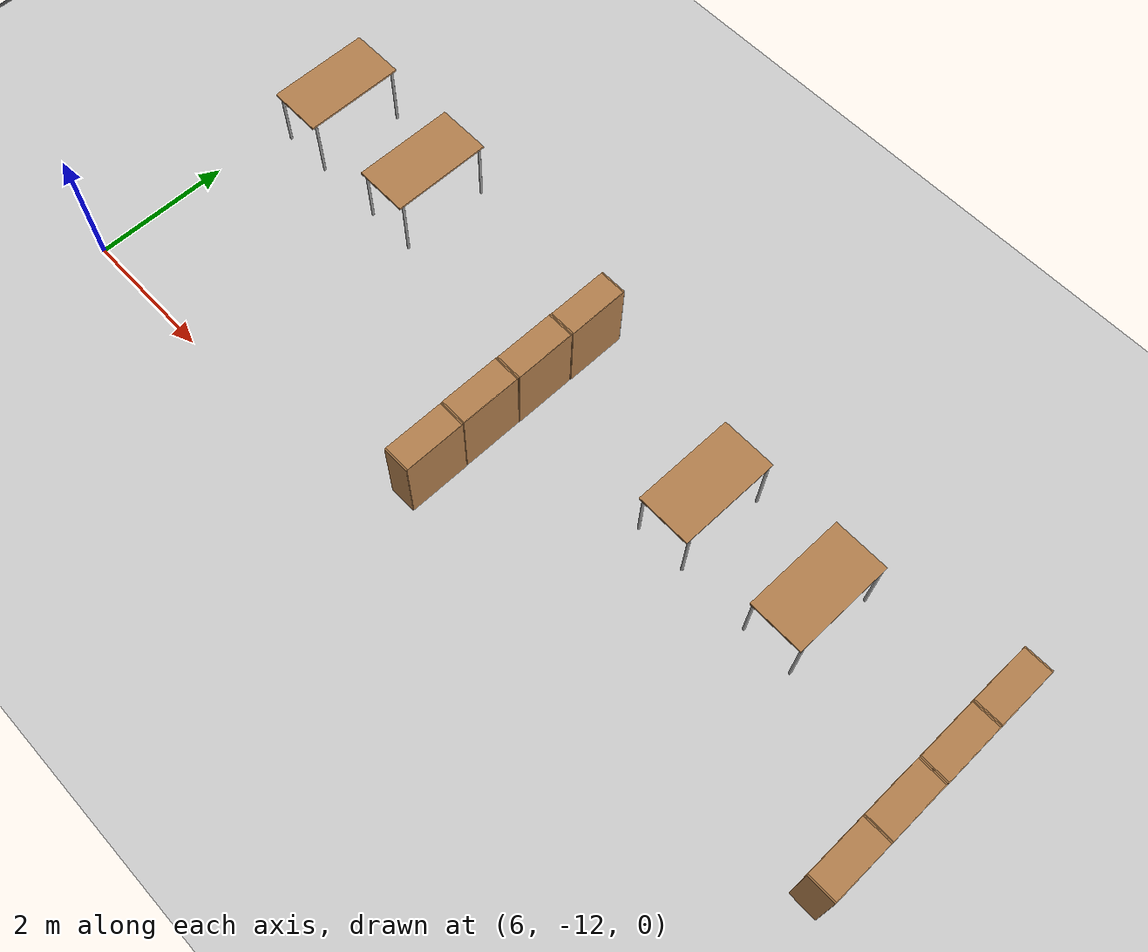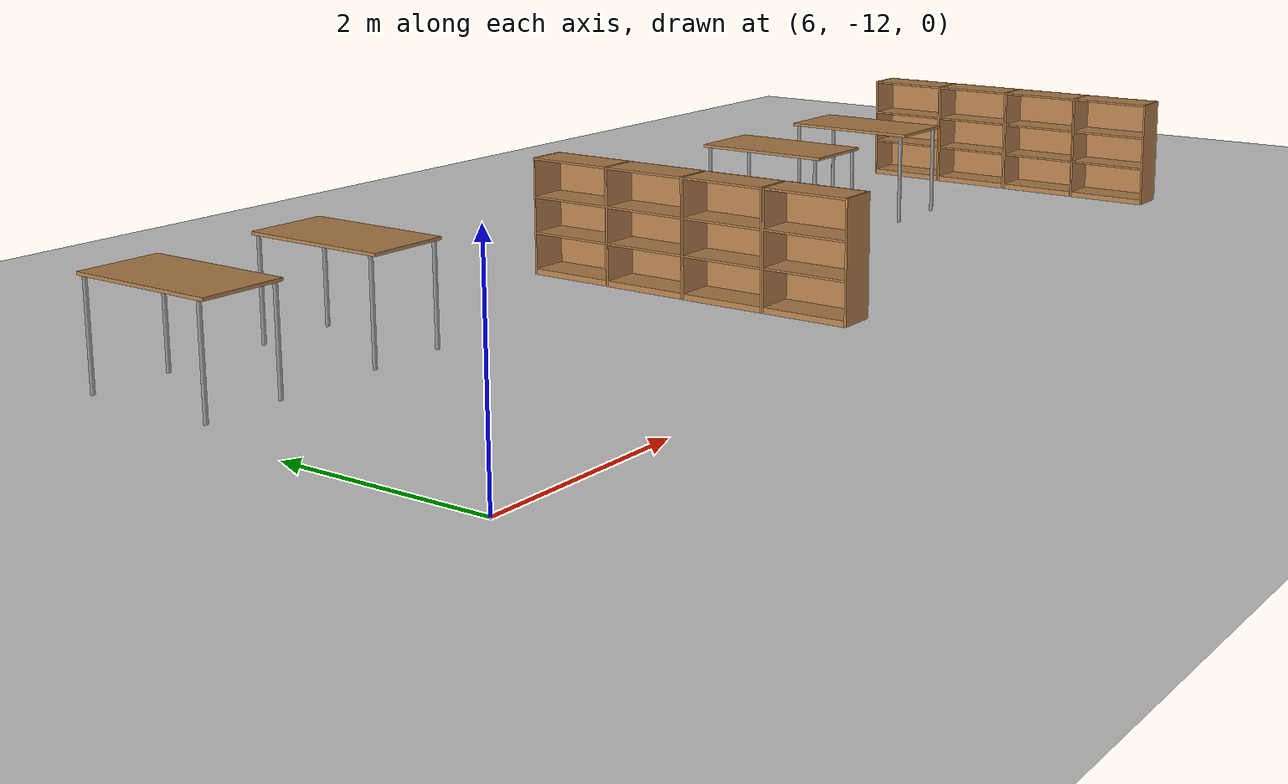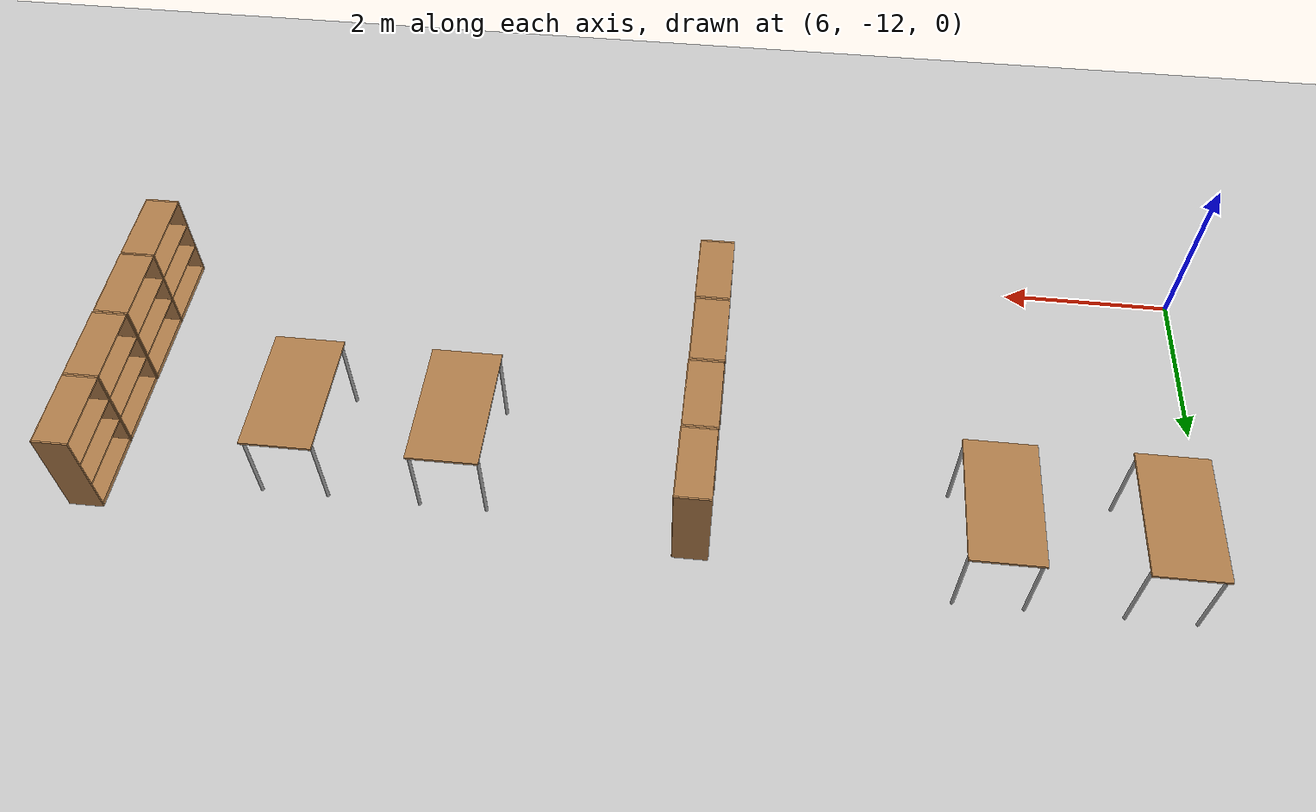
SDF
<sdf version="1.7">
 <world name="default">
  <model name="ground_plane">
   <static>1</static>
   <link name="link">
    <collision name="collision">
     <geometry><plane><normal>0 0 1</normal><size>100 100</size></plane></geometry>
     <surface>
      <contact><collide_bitmask>65535</collide_bitmask></contact>
      <friction><ode><mu>100</mu><mu2>50</mu2></ode></friction>
     </surface>
    </collision>
    <visual name="visual">
     <cast_shadows>0</cast_shadows>
     <geometry><plane><normal>0 0 1</normal><size>100 100</size></plane></geometry>
     <material>
      <script><uri>file://media/materials/scripts/gazebo.material</uri><name>Gazebo/Grey</name></script>
     </material>
    </visual>
   </link>
  </model>
  <model name="asphalt_plane">
   <static>1</static>
   <link name="link">
    <collision name="collision"><geometry><box><size>16.2909 36.5058 0.1</size></box></geometry></collision>
    <visual name="visual">
     <cast_shadows>0</cast_shadows>
     <geometry><box><size>16.2909 36.5058 0.1</size></box></geometry>
     <material>
      <script>
       <uri>model://asphalt_plane/materials/scripts</uri>
       <uri>model://asphalt_plane/materials/textures</uri>
       <name>vrc/asphalt</name>
      </script>
     </material>
    </visual>
   </link>
   <pose>-24.6928 -1.37234 0 0 -0 0</pose>
  </model>
  <model name="bookshelf">
   <static>1</static>
   <link name="link">
    <inertial><mass>1</mass></inertial>
    <collision name="back">
     <pose>0 0.005 0.6 0 -0 0</pose>
     <geometry><box><size>0.9 0.01 1.2</size></box></geometry>
    </collision>
    <visual name="visual1">
     <pose>0 0.005 0.6 0 -0 0</pose>
     <geometry><box><size>0.9 0.01 1.2</size></box></geometry>
     <material>
      <script><uri>file://media/materials/scripts/gazebo.material</uri><name>Gazebo/Wood</name></script>
     </material>
    </visual>
    <collision name="left_side">
     <pose>0.45 -0.195 0.6 0 -0 0</pose>
     <geometry><box><size>0.02 0.4 1.2</size></box></geometry>
    </collision>
    <visual name="visual2">
     <pose>0.45 -0.195 0.6 0 -0 0</pose>
     <geometry><box><size>0.02 0.4 1.2</size></box></geometry>
     <material>
      <script><uri>file://media/materials/scripts/gazebo.material</uri><name>Gazebo/Wood</name></script>
     </material>
    </visual>
    <collision name="right_side">
     <pose>-0.45 -0.195 0.6 0 -0 0</pose>
     <geometry><box><size>0.02 0.4 1.2</size></box></geometry>
    </collision>
    <visual name="visual3">
     <pose>-0.45 -0.195 0.6 0 -0 0</pose>
     <geometry><box><size>0.02 0.4 1.2</size></box></geometry>
     <material>
      <script><uri>file://media/materials/scripts/gazebo.material</uri><name>Gazebo/Wood</name></script>
     </material>
    </visual>
    <collision name="bottom">
     <pose>0 -0.195 0.03 0 -0 0</pose>
     <geometry><box><size>0.88 0.4 0.06</size></box></geometry>
    </collision>
    <visual name="visual4">
     <pose>0 -0.195 0.03 0 -0 0</pose>
     <geometry><box><size>0.88 0.4 0.06</size></box></geometry>
     <material>
      <script><uri>file://media/materials/scripts/gazebo.material</uri><name>Gazebo/Wood</name></script>
     </material>
    </visual>
    <collision name="top">
     <pose>0 -0.195 1.19 0 -0 0</pose>
     <geometry><box><size>0.88 0.4 0.02</size></box></geometry>
    </collision>
    <visual name="visual5">
     <pose>0 -0.195 1.19 0 -0 0</pose>
     <geometry><box><size>0.88 0.4 0.02</size></box></geometry>
     <material>
      <script><uri>file://media/materials/scripts/gazebo.material</uri><name>Gazebo/Wood</name></script>
     </material>
    </visual>
    <collision name="low_shelf">
     <pose>0 -0.195 0.43 0 -0 0</pose>
     <geometry><box><size>0.88 0.4 0.02</size></box></geometry>
    </collision>
    <visual name="visual6">
     <pose>0 -0.195 0.43 0 -0 0</pose>
     <geometry><box><size>0.88 0.4 0.02</size></box></geometry>
     <material>
      <script><uri>file://media/materials/scripts/gazebo.material</uri><name>Gazebo/Wood</name></script>
     </material>
    </visual>
    <collision name="high_shelf">
     <pose>0 -0.195 0.8 0 -0 0</pose>
     <geometry><box><size>0.88 0.4 0.02</size></box></geometry>
    </collision>
    <visual name="visual7">
     <pose>0 -0.195 0.8 0 -0 0</pose>
     <geometry><box><size>0.88 0.4 0.02</size></box></geometry>
     <material>
      <script><uri>file://media/materials/scripts/gazebo.material</uri><name>Gazebo/Wood</name></script>
     </material>
    </visual>
   </link>
   <pose>18.6815 -10.9838 0 0 0 -1.57057</pose>
  </model>
  <model name="bookshelf_clone">
   <static>1</static>
   <link name="link">
    <inertial><mass>1</mass></inertial>
    <collision name="back">
     <pose>0 0.005 0.6 0 -0 0</pose>
     <geometry><box><size>0.9 0.01 1.2</size></box></geometry>
    </collision>
    <visual name="visual1">
     <pose>0 0.005 0.6 0 -0 0</pose>
     <geometry><box><size>0.9 0.01 1.2</size></box></geometry>
     <material>
      <script><uri>file://media/materials/scripts/gazebo.material</uri><name>Gazebo/Wood</name></script>
     </material>
    </visual>
    <collision name="left_side">
     <pose>0.45 -0.195 0.6 0 -0 0</pose>
     <geometry><box><size>0.02 0.4 1.2</size></box></geometry>
    </collision>
    <visual name="visual2">
     <pose>0.45 -0.195 0.6 0 -0 0</pose>
     <geometry><box><size>0.02 0.4 1.2</size></box></geometry>
     <material>
      <script><uri>file://media/materials/scripts/gazebo.material</uri><name>Gazebo/Wood</name></script>
     </material>
    </visual>
    <collision name="right_side">
     <pose>-0.45 -0.195 0.6 0 -0 0</pose>
     <geometry><box><size>0.02 0.4 1.2</size></box></geometry>
    </collision>
    <visual name="visual3">
     <pose>-0.45 -0.195 0.6 0 -0 0</pose>
     <geometry><box><size>0.02 0.4 1.2</size></box></geometry>
     <material>
      <script><uri>file://media/materials/scripts/gazebo.material</uri><name>Gazebo/Wood</name></script>
     </material>
    </visual>
    <collision name="bottom">
     <pose>0 -0.195 0.03 0 -0 0</pose>
     <geometry><box><size>0.88 0.4 0.06</size></box></geometry>
    </collision>
    <visual name="visual4">
     <pose>0 -0.195 0.03 0 -0 0</pose>
     <geometry><box><size>0.88 0.4 0.06</size></box></geometry>
     <material>
      <script><uri>file://media/materials/scripts/gazebo.material</uri><name>Gazebo/Wood</name></script>
     </material>
    </visual>
    <collision name="top">
     <pose>0 -0.195 1.19 0 -0 0</pose>
     <geometry><box><size>0.88 0.4 0.02</size></box></geometry>
    </collision>
    <visual name="visual5">
     <pose>0 -0.195 1.19 0 -0 0</pose>
     <geometry><box><size>0.88 0.4 0.02</size></box></geometry>
     <material>
      <script><uri>file://media/materials/scripts/gazebo.material</uri><name>Gazebo/Wood</name></script>
     </material>
    </visual>
    <collision name="low_shelf">
     <pose>0 -0.195 0.43 0 -0 0</pose>
     <geometry><box><size>0.88 0.4 0.02</size></box></geometry>
    </collision>
    <visual name="visual6">
     <pose>0 -0.195 0.43 0 -0 0</pose>
     <geometry><box><size>0.88 0.4 0.02</size></box></geometry>
     <material>
      <script><uri>file://media/materials/scripts/gazebo.material</uri><name>Gazebo/Wood</name></script>
     </material>
    </visual>
    <collision name="high_shelf">
     <pose>0 -0.195 0.8 0 -0 0</pose>
     <geometry><box><size>0.88 0.4 0.02</size></box></geometry>
    </collision>
    <visual name="visual7">
     <pose>0 -0.195 0.8 0 -0 0</pose>
     <geometry><box><size>0.88 0.4 0.02</size></box></geometry>
     <material>
      <script><uri>file://media/materials/scripts/gazebo.material</uri><name>Gazebo/Wood</name></script>
     </material>
    </visual>
   </link>
   <pose>18.6824 -10.0747 0 0 0 -1.57057</pose>
  </model>
  <model name="bookshelf_clone_0">
   <static>1</static>
   <link name="link">
    <inertial><mass>1</mass></inertial>
    <collision name="back">
     <pose>0 0.005 0.6 0 -0 0</pose>
     <geometry><box><size>0.9 0.01 1.2</size></box></geometry>
    </collision>
    <visual name="visual1">
     <pose>0 0.005 0.6 0 -0 0</pose>
     <geometry><box><size>0.9 0.01 1.2</size></box></geometry>
     <material>
      <script><uri>file://media/materials/scripts/gazebo.material</uri><name>Gazebo/Wood</name></script>
     </material>
    </visual>
    <collision name="left_side">
     <pose>0.45 -0.195 0.6 0 -0 0</pose>
     <geometry><box><size>0.02 0.4 1.2</size></box></geometry>
    </collision>
    <visual name="visual2">
     <pose>0.45 -0.195 0.6 0 -0 0</pose>
     <geometry><box><size>0.02 0.4 1.2</size></box></geometry>
     <material>
      <script><uri>file://media/materials/scripts/gazebo.material</uri><name>Gazebo/Wood</name></script>
     </material>
    </visual>
    <collision name="right_side">
     <pose>-0.45 -0.195 0.6 0 -0 0</pose>
     <geometry><box><size>0.02 0.4 1.2</size></box></geometry>
    </collision>
    <visual name="visual3">
     <pose>-0.45 -0.195 0.6 0 -0 0</pose>
     <geometry><box><size>0.02 0.4 1.2</size></box></geometry>
     <material>
      <script><uri>file://media/materials/scripts/gazebo.material</uri><name>Gazebo/Wood</name></script>
     </material>
    </visual>
    <collision name="bottom">
     <pose>0 -0.195 0.03 0 -0 0</pose>
     <geometry><box><size>0.88 0.4 0.06</size></box></geometry>
    </collision>
    <visual name="visual4">
     <pose>0 -0.195 0.03 0 -0 0</pose>
     <geometry><box><size>0.88 0.4 0.06</size></box></geometry>
     <material>
      <script><uri>file://media/materials/scripts/gazebo.material</uri><name>Gazebo/Wood</name></script>
     </material>
    </visual>
    <collision name="top">
     <pose>0 -0.195 1.19 0 -0 0</pose>
     <geometry><box><size>0.88 0.4 0.02</size></box></geometry>
    </collision>
    <visual name="visual5">
     <pose>0 -0.195 1.19 0 -0 0</pose>
     <geometry><box><size>0.88 0.4 0.02</size></box></geometry>
     <material>
      <script><uri>file://media/materials/scripts/gazebo.material</uri><name>Gazebo/Wood</name></script>
     </material>
    </visual>
    <collision name="low_shelf">
     <pose>0 -0.195 0.43 0 -0 0</pose>
     <geometry><box><size>0.88 0.4 0.02</size></box></geometry>
    </collision>
    <visual name="visual6">
     <pose>0 -0.195 0.43 0 -0 0</pose>
     <geometry><box><size>0.88 0.4 0.02</size></box></geometry>
     <material>
      <script><uri>file://media/materials/scripts/gazebo.material</uri><name>Gazebo/Wood</name></script>
     </material>
    </visual>
    <collision name="high_shelf">
     <pose>0 -0.195 0.8 0 -0 0</pose>
     <geometry><box><size>0.88 0.4 0.02</size></box></geometry>
    </collision>
    <visual name="visual7">
     <pose>0 -0.195 0.8 0 -0 0</pose>
     <geometry><box><size>0.88 0.4 0.02</size></box></geometry>
     <material>
      <script><uri>file://media/materials/scripts/gazebo.material</uri><name>Gazebo/Wood</name></script>
     </material>
    </visual>
   </link>
   <pose>18.6868 -9.15352 0 0 0 -1.57057</pose>
  </model>
  <model name="bookshelf_clone_1">
   <static>1</static>
   <link name="link">
    <inertial><mass>1</mass></inertial>
    <collision name="back">
     <pose>0 0.005 0.6 0 -0 0</pose>
     <geometry><box><size>0.9 0.01 1.2</size></box></geometry>
    </collision>
    <visual name="visual1">
     <pose>0 0.005 0.6 0 -0 0</pose>
     <geometry><box><size>0.9 0.01 1.2</size></box></geometry>
     <material>
      <script><uri>file://media/materials/scripts/gazebo.material</uri><name>Gazebo/Wood</name></script>
     </material>
    </visual>
    <collision name="left_side">
     <pose>0.45 -0.195 0.6 0 -0 0</pose>
     <geometry><box><size>0.02 0.4 1.2</size></box></geometry>
    </collision>
    <visual name="visual2">
     <pose>0.45 -0.195 0.6 0 -0 0</pose>
     <geometry><box><size>0.02 0.4 1.2</size></box></geometry>
     <material>
      <script><uri>file://media/materials/scripts/gazebo.material</uri><name>Gazebo/Wood</name></script>
     </material>
    </visual>
    <collision name="right_side">
     <pose>-0.45 -0.195 0.6 0 -0 0</pose>
     <geometry><box><size>0.02 0.4 1.2</size></box></geometry>
    </collision>
    <visual name="visual3">
     <pose>-0.45 -0.195 0.6 0 -0 0</pose>
     <geometry><box><size>0.02 0.4 1.2</size></box></geometry>
     <material>
      <script><uri>file://media/materials/scripts/gazebo.material</uri><name>Gazebo/Wood</name></script>
     </material>
    </visual>
    <collision name="bottom">
     <pose>0 -0.195 0.03 0 -0 0</pose>
     <geometry><box><size>0.88 0.4 0.06</size></box></geometry>
    </collision>
    <visual name="visual4">
     <pose>0 -0.195 0.03 0 -0 0</pose>
     <geometry><box><size>0.88 0.4 0.06</size></box></geometry>
     <material>
      <script><uri>file://media/materials/scripts/gazebo.material</uri><name>Gazebo/Wood</name></script>
     </material>
    </visual>
    <collision name="top">
     <pose>0 -0.195 1.19 0 -0 0</pose>
     <geometry><box><size>0.88 0.4 0.02</size></box></geometry>
    </collision>
    <visual name="visual5">
     <pose>0 -0.195 1.19 0 -0 0</pose>
     <geometry><box><size>0.88 0.4 0.02</size></box></geometry>
     <material>
      <script><uri>file://media/materials/scripts/gazebo.material</uri><name>Gazebo/Wood</name></script>
     </material>
    </visual>
    <collision name="low_shelf">
     <pose>0 -0.195 0.43 0 -0 0</pose>
     <geometry><box><size>0.88 0.4 0.02</size></box></geometry>
    </collision>
    <visual name="visual6">
     <pose>0 -0.195 0.43 0 -0 0</pose>
     <geometry><box><size>0.88 0.4 0.02</size></box></geometry>
     <material>
      <script><uri>file://media/materials/scripts/gazebo.material</uri><name>Gazebo/Wood</name></script>
     </material>
    </visual>
    <collision name="high_shelf">
     <pose>0 -0.195 0.8 0 -0 0</pose>
     <geometry><box><size>0.88 0.4 0.02</size></box></geometry>
    </collision>
    <visual name="visual7">
     <pose>0 -0.195 0.8 0 -0 0</pose>
     <geometry><box><size>0.88 0.4 0.02</size></box></geometry>
     <material>
      <script><uri>file://media/materials/scripts/gazebo.material</uri><name>Gazebo/Wood</name></script>
     </material>
    </visual>
   </link>
   <pose>18.6868 -8.23662 0 0 0 -1.57057</pose>
  </model>
  <model name="bookshelf_clone_4">
   <static>1</static>
   <link name="link">
    <inertial><mass>1</mass></inertial>
    <collision name="back">
     <pose>0 0.005 0.6 0 -0 0</pose>
     <geometry><box><size>0.9 0.01 1.2</size></box></geometry>
    </collision>
    <visual name="visual1">
     <pose>0 0.005 0.6 0 -0 0</pose>
     <geometry><box><size>0.9 0.01 1.2</size></box></geometry>
     <material>
      <script><uri>file://media/materials/scripts/gazebo.material</uri><name>Gazebo/Wood</name></script>
     </material>
    </visual>
    <collision name="left_side">
     <pose>0.45 -0.195 0.6 0 -0 0</pose>
     <geometry><box><size>0.02 0.4 1.2</size></box></geometry>
    </collision>
    <visual name="visual2">
     <pose>0.45 -0.195 0.6 0 -0 0</pose>
     <geometry><box><size>0.02 0.4 1.2</size></box></geometry>
     <material>
      <script><uri>file://media/materials/scripts/gazebo.material</uri><name>Gazebo/Wood</name></script>
     </material>
    </visual>
    <collision name="right_side">
     <pose>-0.45 -0.195 0.6 0 -0 0</pose>
     <geometry><box><size>0.02 0.4 1.2</size></box></geometry>
    </collision>
    <visual name="visual3">
     <pose>-0.45 -0.195 0.6 0 -0 0</pose>
     <geometry><box><size>0.02 0.4 1.2</size></box></geometry>
     <material>
      <script><uri>file://media/materials/scripts/gazebo.material</uri><name>Gazebo/Wood</name></script>
     </material>
    </visual>
    <collision name="bottom">
     <pose>0 -0.195 0.03 0 -0 0</pose>
     <geometry><box><size>0.88 0.4 0.06</size></box></geometry>
    </collision>
    <visual name="visual4">
     <pose>0 -0.195 0.03 0 -0 0</pose>
     <geometry><box><size>0.88 0.4 0.06</size></box></geometry>
     <material>
      <script><uri>file://media/materials/scripts/gazebo.material</uri><name>Gazebo/Wood</name></script>
     </material>
    </visual>
    <collision name="top">
     <pose>0 -0.195 1.19 0 -0 0</pose>
     <geometry><box><size>0.88 0.4 0.02</size></box></geometry>
    </collision>
    <visual name="visual5">
     <pose>0 -0.195 1.19 0 -0 0</pose>
     <geometry><box><size>0.88 0.4 0.02</size></box></geometry>
     <material>
      <script><uri>file://media/materials/scripts/gazebo.material</uri><name>Gazebo/Wood</name></script>
     </material>
    </visual>
    <collision name="low_shelf">
     <pose>0 -0.195 0.43 0 -0 0</pose>
     <geometry><box><size>0.88 0.4 0.02</size></box></geometry>
    </collision>
    <visual name="visual6">
     <pose>0 -0.195 0.43 0 -0 0</pose>
     <geometry><box><size>0.88 0.4 0.02</size></box></geometry>
     <material>
      <script><uri>file://media/materials/scripts/gazebo.material</uri><name>Gazebo/Wood</name></script>
     </material>
    </visual>
    <collision name="high_shelf">
     <pose>0 -0.195 0.8 0 -0 0</pose>
     <geometry><box><size>0.88 0.4 0.02</size></box></geometry>
    </collision>
    <visual name="visual7">
     <pose>0 -0.195 0.8 0 -0 0</pose>
     <geometry><box><size>0.88 0.4 0.02</size></box></geometry>
     <material>
      <script><uri>file://media/materials/scripts/gazebo.material</uri><name>Gazebo/Wood</name></script>
     </material>
    </visual>
   </link>
   <pose>11.8663 -10.9901 0 0 0 -1.57057</pose>
  </model>
  <model name="bookshelf_clone_5">
   <static>1</static>
   <link name="link">
    <inertial><mass>1</mass></inertial>
    <collision name="back">
     <pose>0 0.005 0.6 0 -0 0</pose>
     <geometry><box><size>0.9 0.01 1.2</size></box></geometry>
    </collision>
    <visual name="visual1">
     <pose>0 0.005 0.6 0 -0 0</pose>
     <geometry><box><size>0.9 0.01 1.2</size></box></geometry>
     <material>
      <script><uri>file://media/materials/scripts/gazebo.material</uri><name>Gazebo/Wood</name></script>
     </material>
    </visual>
    <collision name="left_side">
     <pose>0.45 -0.195 0.6 0 -0 0</pose>
     <geometry><box><size>0.02 0.4 1.2</size></box></geometry>
    </collision>
    <visual name="visual2">
     <pose>0.45 -0.195 0.6 0 -0 0</pose>
     <geometry><box><size>0.02 0.4 1.2</size></box></geometry>
     <material>
      <script><uri>file://media/materials/scripts/gazebo.material</uri><name>Gazebo/Wood</name></script>
     </material>
    </visual>
    <collision name="right_side">
     <pose>-0.45 -0.195 0.6 0 -0 0</pose>
     <geometry><box><size>0.02 0.4 1.2</size></box></geometry>
    </collision>
    <visual name="visual3">
     <pose>-0.45 -0.195 0.6 0 -0 0</pose>
     <geometry><box><size>0.02 0.4 1.2</size></box></geometry>
     <material>
      <script><uri>file://media/materials/scripts/gazebo.material</uri><name>Gazebo/Wood</name></script>
     </material>
    </visual>
    <collision name="bottom">
     <pose>0 -0.195 0.03 0 -0 0</pose>
     <geometry><box><size>0.88 0.4 0.06</size></box></geometry>
    </collision>
    <visual name="visual4">
     <pose>0 -0.195 0.03 0 -0 0</pose>
     <geometry><box><size>0.88 0.4 0.06</size></box></geometry>
     <material>
      <script><uri>file://media/materials/scripts/gazebo.material</uri><name>Gazebo/Wood</name></script>
     </material>
    </visual>
    <collision name="top">
     <pose>0 -0.195 1.19 0 -0 0</pose>
     <geometry><box><size>0.88 0.4 0.02</size></box></geometry>
    </collision>
    <visual name="visual5">
     <pose>0 -0.195 1.19 0 -0 0</pose>
     <geometry><box><size>0.88 0.4 0.02</size></box></geometry>
     <material>
      <script><uri>file://media/materials/scripts/gazebo.material</uri><name>Gazebo/Wood</name></script>
     </material>
    </visual>
    <collision name="low_shelf">
     <pose>0 -0.195 0.43 0 -0 0</pose>
     <geometry><box><size>0.88 0.4 0.02</size></box></geometry>
    </collision>
    <visual name="visual6">
     <pose>0 -0.195 0.43 0 -0 0</pose>
     <geometry><box><size>0.88 0.4 0.02</size></box></geometry>
     <material>
      <script><uri>file://media/materials/scripts/gazebo.material</uri><name>Gazebo/Wood</name></script>
     </material>
    </visual>
    <collision name="high_shelf">
     <pose>0 -0.195 0.8 0 -0 0</pose>
     <geometry><box><size>0.88 0.4 0.02</size></box></geometry>
    </collision>
    <visual name="visual7">
     <pose>0 -0.195 0.8 0 -0 0</pose>
     <geometry><box><size>0.88 0.4 0.02</size></box></geometry>
     <material>
      <script><uri>file://media/materials/scripts/gazebo.material</uri><name>Gazebo/Wood</name></script>
     </material>
    </visual>
   </link>
   <pose>11.8617 -10.0713 0 0 0 -1.57057</pose>
  </model>
  <model name="bookshelf_clone_6">
   <static>1</static>
   <link name="link">
    <inertial><mass>1</mass></inertial>
    <collision name="back">
     <pose>0 0.005 0.6 0 -0 0</pose>
     <geometry><box><size>0.9 0.01 1.2</size></box></geometry>
    </collision>
    <visual name="visual1">
     <pose>0 0.005 0.6 0 -0 0</pose>
     <geometry><box><size>0.9 0.01 1.2</size></box></geometry>
     <material>
      <script><uri>file://media/materials/scripts/gazebo.material</uri><name>Gazebo/Wood</name></script>
     </material>
    </visual>
    <collision name="left_side">
     <pose>0.45 -0.195 0.6 0 -0 0</pose>
     <geometry><box><size>0.02 0.4 1.2</size></box></geometry>
    </collision>
    <visual name="visual2">
     <pose>0.45 -0.195 0.6 0 -0 0</pose>
     <geometry><box><size>0.02 0.4 1.2</size></box></geometry>
     <material>
      <script><uri>file://media/materials/scripts/gazebo.material</uri><name>Gazebo/Wood</name></script>
     </material>
    </visual>
    <collision name="right_side">
     <pose>-0.45 -0.195 0.6 0 -0 0</pose>
     <geometry><box><size>0.02 0.4 1.2</size></box></geometry>
    </collision>
    <visual name="visual3">
     <pose>-0.45 -0.195 0.6 0 -0 0</pose>
     <geometry><box><size>0.02 0.4 1.2</size></box></geometry>
     <material>
      <script><uri>file://media/materials/scripts/gazebo.material</uri><name>Gazebo/Wood</name></script>
     </material>
    </visual>
    <collision name="bottom">
     <pose>0 -0.195 0.03 0 -0 0</pose>
     <geometry><box><size>0.88 0.4 0.06</size></box></geometry>
    </collision>
    <visual name="visual4">
     <pose>0 -0.195 0.03 0 -0 0</pose>
     <geometry><box><size>0.88 0.4 0.06</size></box></geometry>
     <material>
      <script><uri>file://media/materials/scripts/gazebo.material</uri><name>Gazebo/Wood</name></script>
     </material>
    </visual>
    <collision name="top">
     <pose>0 -0.195 1.19 0 -0 0</pose>
     <geometry><box><size>0.88 0.4 0.02</size></box></geometry>
    </collision>
    <visual name="visual5">
     <pose>0 -0.195 1.19 0 -0 0</pose>
     <geometry><box><size>0.88 0.4 0.02</size></box></geometry>
     <material>
      <script><uri>file://media/materials/scripts/gazebo.material</uri><name>Gazebo/Wood</name></script>
     </material>
    </visual>
    <collision name="low_shelf">
     <pose>0 -0.195 0.43 0 -0 0</pose>
     <geometry><box><size>0.88 0.4 0.02</size></box></geometry>
    </collision>
    <visual name="visual6">
     <pose>0 -0.195 0.43 0 -0 0</pose>
     <geometry><box><size>0.88 0.4 0.02</size></box></geometry>
     <material>
      <script><uri>file://media/materials/scripts/gazebo.material</uri><name>Gazebo/Wood</name></script>
     </material>
    </visual>
    <collision name="high_shelf">
     <pose>0 -0.195 0.8 0 -0 0</pose>
     <geometry><box><size>0.88 0.4 0.02</size></box></geometry>
    </collision>
    <visual name="visual7">
     <pose>0 -0.195 0.8 0 -0 0</pose>
     <geometry><box><size>0.88 0.4 0.02</size></box></geometry>
     <material>
      <script><uri>file://media/materials/scripts/gazebo.material</uri><name>Gazebo/Wood</name></script>
     </material>
    </visual>
   </link>
   <pose>11.8663 -9.15264 0 0 0 -1.57057</pose>
  </model>
  <model name="bookshelf_clone_7">
   <static>1</static>
   <link name="link">
    <inertial><mass>1</mass></inertial>
    <collision name="back">
     <pose>0 0.005 0.6 0 -0 0</pose>
     <geometry><box><size>0.9 0.01 1.2</size></box></geometry>
    </collision>
    <visual name="visual1">
     <pose>0 0.005 0.6 0 -0 0</pose>
     <geometry><box><size>0.9 0.01 1.2</size></box></geometry>
     <material>
      <script><uri>file://media/materials/scripts/gazebo.material</uri><name>Gazebo/Wood</name></script>
     </material>
    </visual>
    <collision name="left_side">
     <pose>0.45 -0.195 0.6 0 -0 0</pose>
     <geometry><box><size>0.02 0.4 1.2</size></box></geometry>
    </collision>
    <visual name="visual2">
     <pose>0.45 -0.195 0.6 0 -0 0</pose>
     <geometry><box><size>0.02 0.4 1.2</size></box></geometry>
     <material>
      <script><uri>file://media/materials/scripts/gazebo.material</uri><name>Gazebo/Wood</name></script>
     </material>
    </visual>
    <collision name="right_side">
     <pose>-0.45 -0.195 0.6 0 -0 0</pose>
     <geometry><box><size>0.02 0.4 1.2</size></box></geometry>
    </collision>
    <visual name="visual3">
     <pose>-0.45 -0.195 0.6 0 -0 0</pose>
     <geometry><box><size>0.02 0.4 1.2</size></box></geometry>
     <material>
      <script><uri>file://media/materials/scripts/gazebo.material</uri><name>Gazebo/Wood</name></script>
     </material>
    </visual>
    <collision name="bottom">
     <pose>0 -0.195 0.03 0 -0 0</pose>
     <geometry><box><size>0.88 0.4 0.06</size></box></geometry>
    </collision>
    <visual name="visual4">
     <pose>0 -0.195 0.03 0 -0 0</pose>
     <geometry><box><size>0.88 0.4 0.06</size></box></geometry>
     <material>
      <script><uri>file://media/materials/scripts/gazebo.material</uri><name>Gazebo/Wood</name></script>
     </material>
    </visual>
    <collision name="top">
     <pose>0 -0.195 1.19 0 -0 0</pose>
     <geometry><box><size>0.88 0.4 0.02</size></box></geometry>
    </collision>
    <visual name="visual5">
     <pose>0 -0.195 1.19 0 -0 0</pose>
     <geometry><box><size>0.88 0.4 0.02</size></box></geometry>
     <material>
      <script><uri>file://media/materials/scripts/gazebo.material</uri><name>Gazebo/Wood</name></script>
     </material>
    </visual>
    <collision name="low_shelf">
     <pose>0 -0.195 0.43 0 -0 0</pose>
     <geometry><box><size>0.88 0.4 0.02</size></box></geometry>
    </collision>
    <visual name="visual6">
     <pose>0 -0.195 0.43 0 -0 0</pose>
     <geometry><box><size>0.88 0.4 0.02</size></box></geometry>
     <material>
      <script><uri>file://media/materials/scripts/gazebo.material</uri><name>Gazebo/Wood</name></script>
     </material>
    </visual>
    <collision name="high_shelf">
     <pose>0 -0.195 0.8 0 -0 0</pose>
     <geometry><box><size>0.88 0.4 0.02</size></box></geometry>
    </collision>
    <visual name="visual7">
     <pose>0 -0.195 0.8 0 -0 0</pose>
     <geometry><box><size>0.88 0.4 0.02</size></box></geometry>
     <material>
      <script><uri>file://media/materials/scripts/gazebo.material</uri><name>Gazebo/Wood</name></script>
     </material>
    </visual>
   </link>
   <pose>11.8709 -8.23393 0 0 0 -1.57057</pose>
  </model>
  <model name="table_clone_0_clone_clone">
   <static>1</static>
   <link name="link">
    <collision name="surface">
     <pose>0 0 1 0 -0 0</pose>
     <geometry><box><size>1.5 0.8 0.03</size></box></geometry>
     <surface><friction><ode><mu>0.6</mu><mu2>0.6</mu2></ode></friction></surface>
    </collision>
    <visual name="visual1">
     <pose>0 0 1 0 -0 0</pose>
     <geometry><box><size>1.5 0.8 0.03</size></box></geometry>
     <material>
      <script><uri>file://media/materials/scripts/gazebo.material</uri><name>Gazebo/Wood</name></script>
     </material>
    </visual>
    <collision name="front_left_leg">
     <pose>0.68 0.38 0.5 0 -0 0</pose>
     <geometry><cylinder><radius>0.02</radius><length>1</length></cylinder></geometry>
    </collision>
    <visual name="front_left_leg">
     <pose>0.68 0.38 0.5 0 -0 0</pose>
     <geometry><cylinder><radius>0.02</radius><length>1</length></cylinder></geometry>
     <material>
      <script><uri>file://media/materials/scripts/gazebo.material</uri><name>Gazebo/Grey</name></script>
     </material>
    </visual>
    <collision name="front_right_leg">
     <pose>0.68 -0.38 0.5 0 -0 0</pose>
     <geometry><cylinder><radius>0.02</radius><length>1</length></cylinder></geometry>
    </collision>
    <visual name="front_right_leg">
     <pose>0.68 -0.38 0.5 0 -0 0</pose>
     <geometry><cylinder><radius>0.02</radius><length>1</length></cylinder></geometry>
     <material>
      <script><uri>file://media/materials/scripts/gazebo.material</uri><name>Gazebo/Grey</name></script>
     </material>
    </visual>
    <collision name="back_right_leg">
     <pose>-0.68 -0.38 0.5 0 -0 0</pose>
     <geometry><cylinder><radius>0.02</radius><length>1</length></cylinder></geometry>
    </collision>
    <visual name="back_right_leg">
     <pose>-0.68 -0.38 0.5 0 -0 0</pose>
     <geometry><cylinder><radius>0.02</radius><length>1</length></cylinder></geometry>
     <material>
      <script><uri>file://media/materials/scripts/gazebo.material</uri><name>Gazebo/Grey</name></script>
     </material>
    </visual>
    <collision name="back_left_leg">
     <pose>-0.68 0.38 0.5 0 -0 0</pose>
     <geometry><cylinder><radius>0.02</radius><length>1</length></cylinder></geometry>
    </collision>
    <visual name="back_left_leg">
     <pose>-0.68 0.38 0.5 0 -0 0</pose>
     <geometry><cylinder><radius>0.02</radius><length>1</length></cylinder></geometry>
     <material>
      <script><uri>file://media/materials/scripts/gazebo.material</uri><name>Gazebo/Grey</name></script>
     </material>
    </visual>
   </link>
   <pose>6.64519 -8.20524 0 0 0 -1.57488</pose>
  </model>
  <model name="table_clone_0_clone_clone_0">
   <static>1</static>
   <link name="link">
    <collision name="surface">
     <pose>0 0 1 0 -0 0</pose>
     <geometry><box><size>1.5 0.8 0.03</size></box></geometry>
     <surface><friction><ode><mu>0.6</mu><mu2>0.6</mu2></ode></friction></surface>
    </collision>
    <visual name="visual1">
     <pose>0 0 1 0 -0 0</pose>
     <geometry><box><size>1.5 0.8 0.03</size></box></geometry>
     <material>
      <script><uri>file://media/materials/scripts/gazebo.material</uri><name>Gazebo/Wood</name></script>
     </material>
    </visual>
    <collision name="front_left_leg">
     <pose>0.68 0.38 0.5 0 -0 0</pose>
     <geometry><cylinder><radius>0.02</radius><length>1</length></cylinder></geometry>
    </collision>
    <visual name="front_left_leg">
     <pose>0.68 0.38 0.5 0 -0 0</pose>
     <geometry><cylinder><radius>0.02</radius><length>1</length></cylinder></geometry>
     <material>
      <script><uri>file://media/materials/scripts/gazebo.material</uri><name>Gazebo/Grey</name></script>
     </material>
    </visual>
    <collision name="front_right_leg">
     <pose>0.68 -0.38 0.5 0 -0 0</pose>
     <geometry><cylinder><radius>0.02</radius><length>1</length></cylinder></geometry>
    </collision>
    <visual name="front_right_leg">
     <pose>0.68 -0.38 0.5 0 -0 0</pose>
     <geometry><cylinder><radius>0.02</radius><length>1</length></cylinder></geometry>
     <material>
      <script><uri>file://media/materials/scripts/gazebo.material</uri><name>Gazebo/Grey</name></script>
     </material>
    </visual>
    <collision name="back_right_leg">
     <pose>-0.68 -0.38 0.5 0 -0 0</pose>
     <geometry><cylinder><radius>0.02</radius><length>1</length></cylinder></geometry>
    </collision>
    <visual name="back_right_leg">
     <pose>-0.68 -0.38 0.5 0 -0 0</pose>
     <geometry><cylinder><radius>0.02</radius><length>1</length></cylinder></geometry>
     <material>
      <script><uri>file://media/materials/scripts/gazebo.material</uri><name>Gazebo/Grey</name></script>
     </material>
    </visual>
    <collision name="back_left_leg">
     <pose>-0.68 0.38 0.5 0 -0 0</pose>
     <geometry><cylinder><radius>0.02</radius><length>1</length></cylinder></geometry>
    </collision>
    <visual name="back_left_leg">
     <pose>-0.68 0.38 0.5 0 -0 0</pose>
     <geometry><cylinder><radius>0.02</radius><length>1</length></cylinder></geometry>
     <material>
      <script><uri>file://media/materials/scripts/gazebo.material</uri><name>Gazebo/Grey</name></script>
     </material>
    </visual>
   </link>
   <pose>8.45975 -8.20291 0 0 0 -1.57488</pose>
  </model>
  <model name="table_clone_0_clone_clone_0_clone">
   <static>1</static>
   <link name="link">
    <collision name="surface">
     <pose>0 0 1 0 -0 0</pose>
     <geometry><box><size>1.5 0.8 0.03</size></box></geometry>
     <surface><friction><ode><mu>0.6</mu><mu2>0.6</mu2></ode></friction></surface>
    </collision>
    <visual name="visual1">
     <pose>0 0 1 0 -0 0</pose>
     <geometry><box><size>1.5 0.8 0.03</size></box></geometry>
     <material>
      <script><uri>file://media/materials/scripts/gazebo.material</uri><name>Gazebo/Wood</name></script>
     </material>
    </visual>
    <collision name="front_left_leg">
     <pose>0.68 0.38 0.5 0 -0 0</pose>
     <geometry><cylinder><radius>0.02</radius><length>1</length></cylinder></geometry>
    </collision>
    <visual name="front_left_leg">
     <pose>0.68 0.38 0.5 0 -0 0</pose>
     <geometry><cylinder><radius>0.02</radius><length>1</length></cylinder></geometry>
     <material>
      <script><uri>file://media/materials/scripts/gazebo.material</uri><name>Gazebo/Grey</name></script>
     </material>
    </visual>
    <collision name="front_right_leg">
     <pose>0.68 -0.38 0.5 0 -0 0</pose>
     <geometry><cylinder><radius>0.02</radius><length>1</length></cylinder></geometry>
    </collision>
    <visual name="front_right_leg">
     <pose>0.68 -0.38 0.5 0 -0 0</pose>
     <geometry><cylinder><radius>0.02</radius><length>1</length></cylinder></geometry>
     <material>
      <script><uri>file://media/materials/scripts/gazebo.material</uri><name>Gazebo/Grey</name></script>
     </material>
    </visual>
    <collision name="back_right_leg">
     <pose>-0.68 -0.38 0.5 0 -0 0</pose>
     <geometry><cylinder><radius>0.02</radius><length>1</length></cylinder></geometry>
    </collision>
    <visual name="back_right_leg">
     <pose>-0.68 -0.38 0.5 0 -0 0</pose>
     <geometry><cylinder><radius>0.02</radius><length>1</length></cylinder></geometry>
     <material>
      <script><uri>file://media/materials/scripts/gazebo.material</uri><name>Gazebo/Grey</name></script>
     </material>
    </visual>
    <collision name="back_left_leg">
     <pose>-0.68 0.38 0.5 0 -0 0</pose>
     <geometry><cylinder><radius>0.02</radius><length>1</length></cylinder></geometry>
    </collision>
    <visual name="back_left_leg">
     <pose>-0.68 0.38 0.5 0 -0 0</pose>
     <geometry><cylinder><radius>0.02</radius><length>1</length></cylinder></geometry>
     <material>
      <script><uri>file://media/materials/scripts/gazebo.material</uri><name>Gazebo/Grey</name></script>
     </material>
    </visual>
   </link>
   <pose>16.1935 -8.85964 0 0 0 -1.57488</pose>
  </model>
  <model name="table_clone_0_clone_clone_0_clone_0">
   <static>1</static>
   <link name="link">
    <collision name="surface">
     <pose>0 0 1 0 -0 0</pose>
     <geometry><box><size>1.5 0.8 0.03</size></box></geometry>
     <surface><friction><ode><mu>0.6</mu><mu2>0.6</mu2></ode></friction></surface>
    </collision>
    <visual name="visual1">
     <pose>0 0 1 0 -0 0</pose>
     <geometry><box><size>1.5 0.8 0.03</size></box></geometry>
     <material>
      <script><uri>file://media/materials/scripts/gazebo.material</uri><name>Gazebo/Wood</name></script>
     </material>
    </visual>
    <collision name="front_left_leg">
     <pose>0.68 0.38 0.5 0 -0 0</pose>
     <geometry><cylinder><radius>0.02</radius><length>1</length></cylinder></geometry>
    </collision>
    <visual name="front_left_leg">
     <pose>0.68 0.38 0.5 0 -0 0</pose>
     <geometry><cylinder><radius>0.02</radius><length>1</length></cylinder></geometry>
     <material>
      <script><uri>file://media/materials/scripts/gazebo.material</uri><name>Gazebo/Grey</name></script>
     </material>
    </visual>
    <collision name="front_right_leg">
     <pose>0.68 -0.38 0.5 0 -0 0</pose>
     <geometry><cylinder><radius>0.02</radius><length>1</length></cylinder></geometry>
    </collision>
    <visual name="front_right_leg">
     <pose>0.68 -0.38 0.5 0 -0 0</pose>
     <geometry><cylinder><radius>0.02</radius><length>1</length></cylinder></geometry>
     <material>
      <script><uri>file://media/materials/scripts/gazebo.material</uri><name>Gazebo/Grey</name></script>
     </material>
    </visual>
    <collision name="back_right_leg">
     <pose>-0.68 -0.38 0.5 0 -0 0</pose>
     <geometry><cylinder><radius>0.02</radius><length>1</length></cylinder></geometry>
    </collision>
    <visual name="back_right_leg">
     <pose>-0.68 -0.38 0.5 0 -0 0</pose>
     <geometry><cylinder><radius>0.02</radius><length>1</length></cylinder></geometry>
     <material>
      <script><uri>file://media/materials/scripts/gazebo.material</uri><name>Gazebo/Grey</name></script>
     </material>
    </visual>
    <collision name="back_left_leg">
     <pose>-0.68 0.38 0.5 0 -0 0</pose>
     <geometry><cylinder><radius>0.02</radius><length>1</length></cylinder></geometry>
    </collision>
    <visual name="back_left_leg">
     <pose>-0.68 0.38 0.5 0 -0 0</pose>
     <geometry><cylinder><radius>0.02</radius><length>1</length></cylinder></geometry>
     <material>
      <script><uri>file://media/materials/scripts/gazebo.material</uri><name>Gazebo/Grey</name></script>
     </material>
    </visual>
   </link>
   <pose>14.3778 -8.85286 0 0 0 -1.57488</pose>
  </model>
 </world>
</sdf>
